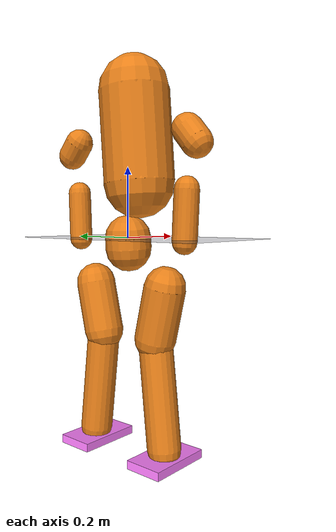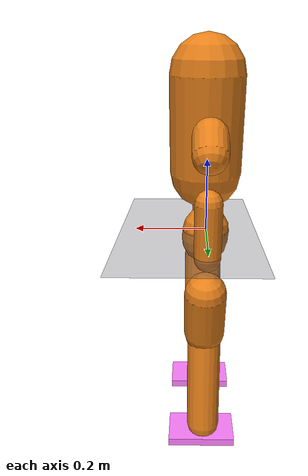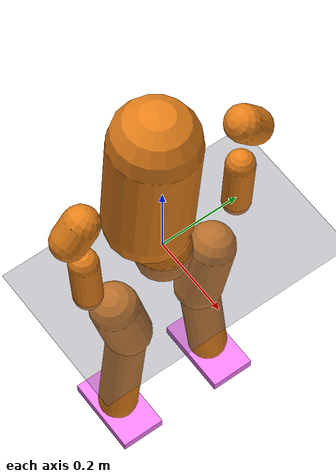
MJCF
<mujoco model="x1">
  <compiler angle="radian" />
  <default>
    <motor ctrlrange="-1 1" ctrllimited="true" />
  </default>

  <option timestep="0.0083333333" gravity="0 0 -9.81" integrator="implicitfast" />

  <worldbody>
    <geom name="ground" type="plane" size="0 0 0.05" pos="0 0 0" friction="1.0 0.05 0.05" condim="4" contype="1" conaffinity="1" rgba="0.3 0.3 0.35 1" />
    <body name="base_link" pos="0 0 0">
      <inertial pos="0.00252285 -0.00063439 0.03023409" mass="4.3041648" quat="-0.49993409 0.50022042 0.50515004 -0.49464013" diaginertia="0.01083013 0.021810116 0.026806174" />
      <freejoint name="floating_base" />
      <geom name="base_link_col" type="capsule" fromto="0 0 0 0.00245 0 -0.03" size="0.066" density="0" contype="1" conaffinity="1" friction="1.0 0.05 0.05" condim="4" rgba="0.9 0.5 0.1 1" group="1" />
      <body name="lumbar_yaw_link" pos="0.00245 0 0.11553403" quat="1 0 0 -2.274557e-05">
        <inertial pos="-0.01800066 1.4e-06 0.02432982" mass="0.36251906" quat="0.99348394 2.3462644e-05 0.11397217 -1.2536067e-05" diaginertia="0.00034245685 0.00045823 0.00065509315" />
        <joint name="lumbar_yaw_joint" type="hinge" limited="true" pos="0 0 0" axis="0 0 1" range="-1.0000 1.0000" stiffness="375.0" damping="37.5" armature="0.02" frictionloss="3.0" />
        <body name="lumbar_roll_link" pos="0 0 0.0405" quat="0.5 0.5 -0.5 -0.5">
          <inertial pos="-0.00029919 0.0003642 -0.00019197" mass="0.03412073" quat="0.53529739 0.56270362 0.3392439 -0.53078707" diaginertia="4.8125283e-06 4.9030789e-06 5.4643928e-06" />
          <joint name="lumbar_roll_joint" type="hinge" limited="true" pos="0 0 0" axis="0 0 1" range="-0.2500 0.2500" stiffness="375.0" damping="37.5" armature="0.02" frictionloss="3.0" />
          <body name="lumbar_pitch_link" pos="0 0 0" quat="0.70710678 0 0.70710678 0">
            <inertial pos="0.00070244 0.21815812 -0.00117164" mass="9.1971074" quat="-0.48427463 -0.49573294 0.50954022 0.50999579" diaginertia="0.060694152 0.12392505 0.16020602" />
            <joint name="lumbar_pitch_joint" type="hinge" limited="true" pos="0 0 0" axis="0 0 -1" range="-0.1500 0.4500" stiffness="450.0" damping="45.0" armature="0.02" frictionloss="4.0" />
            <geom name="lumbar_pitch_link_col" type="capsule" fromto="0 0 0.04 0 0.256 0.02" size="0.1" density="0" contype="1" conaffinity="1" friction="1.0 0.05 0.05" condim="4" rgba="0.9 0.5 0.1 1" group="1" />
            <body name="left_shoulder_pitch_link" pos="0 0.256 -0.1458" quat="0 0 0 -1" gravcomp="0">
              <inertial pos="-0.00251212 -0.00149141 -0.05674475" mass="1.0067875" quat="-0.67979561 -0.055012575 0.72872618 -0.061722725" diaginertia="0.0008533978 0.00095816181 0.0010856204" />
              <joint name="left_shoulder_pitch_joint" type="hinge" limited="true" pos="0 0 0" axis="0 0 -1" range="-2.5000 1.5000" stiffness="50.0" damping="5.0" armature="0.01" frictionloss="0.5" />
              <body name="left_shoulder_roll_link" pos="-0.0313 0 -0.0592" quat="0.70710548 0 -0.70710808 0" gravcomp="0">
                <inertial pos="0.000154 0.07784637 -0.02711338" mass="0.69169508" quat="-0.53585784 -0.46185342 0.5464353 0.44828145" diaginertia="0.00063698245 0.0011961138 0.0013367737" />
                <joint name="left_shoulder_roll_joint" type="hinge" limited="true" pos="0 0 0" axis="0 0 -1" range="-2.0000 0.0000" stiffness="50.0" damping="5.0" armature="0.01" frictionloss="0.5" />
                <body name="left_shoulder_yaw_link" pos="0 0.1252 -0.0313" quat="0.5 0.5 0.5 -0.5" gravcomp="0">
                  <inertial pos="-2.68e-06 0.00182113 -0.00392718" mass="0.72559372" quat="-0.46931073 0.5297545 -0.51442063 -0.48423033" diaginertia="0.0004812039 0.0011604112 0.0011833549" />
                  <joint name="left_shoulder_yaw_joint" type="hinge" limited="true" pos="0 0 0" axis="0 0 1" range="-1.8000 1.8000" stiffness="50.0" damping="5.0" armature="0.01" frictionloss="0.5" />
                  <geom name="left_shoulder_yaw_link_col" type="capsule" fromto="0 0 0 0 -0.031 -0.0365" size="0.042" density="0" contype="1" conaffinity="1" friction="1.0 0.05 0.05" condim="4" rgba="0.9 0.5 0.1 1" group="1" />
                  <body name="left_elbow_pitch_link" pos="0 -0.031 -0.0365" quat="0.70710678 -0.70710678 0 0" gravcomp="0">
                    <inertial pos="2.604e-05 0.07528242 0.0268658" mass="0.69780135" quat="0.42216492 0.56749847 -0.42219566 -0.56698597" diaginertia="0.00061435924 0.0010006506 0.0011626702" />
                    <joint name="left_elbow_pitch_joint" type="hinge" limited="true" pos="0 0 0" axis="0 0 1" range="0.0000 2.0000" stiffness="50.0" damping="5.0" armature="0.01" frictionloss="0.5" />
                    <body name="left_elbow_yaw_link" pos="0 0.117 0.031" quat="0.49999908 0.49999908 -0.50000092 0.50000092" gravcomp="0">
                      <inertial pos="3.656e-05 0.00424199 -0.05421422" mass="0.28787886" quat="0.70530782 0.060241355 -0.70390283 -0.058588874" diaginertia="0.00054032221 0.0007024769 0.00071486088" />
                      <joint name="left_elbow_yaw_joint" type="hinge" limited="true" pos="0 0 0" axis="0 0 1" range="-1.8000 1.8000" stiffness="50.0" damping="5.0" armature="0.01" frictionloss="0.5" />
                      <geom name="left_elbow_yaw_link_col" type="capsule" fromto="0 0 0 0.006 9.9998e-05 -0.1394" size="0.034" density="0" contype="1" conaffinity="1" friction="1.0 0.05 0.05" condim="4" rgba="0.9 0.5 0.1 1" group="1" />
                      <body name="left_wrist_pitch_link" pos="0.006 9.9998e-05 -0.1394" quat="0.62160997 0.78332691 0 0" gravcomp="0">
                        <inertial pos="-9.994e-05 0 0.00229425" mass="0.00900738" quat="0 0 0.70710678 0.70710678" diaginertia="2.4e-07 3.8e-07 5.7e-07" />
                        <joint name="left_wrist_pitch_joint" type="hinge" limited="true" pos="0 0 0" axis="1 0 0" range="-0.4000 0.4000" stiffness="25.0" damping="2.5" armature="0.005" frictionloss="0.2" />
                        <body name="left_wrist_roll_link" pos="0 0 0" quat="0.73068165 -0.61544466 0.19037934 -0.22602632" gravcomp="0">
                          <inertial pos="-0.019731143 0.0013385766 -0.032177575" mass="0.370899" quat="-0.16415344 -0.35401035 0.43660468 0.81062116" diaginertia="0.000211598 0.000356841 0.000404077" />
                          <joint name="left_wrist_roll_joint" type="hinge" limited="true" pos="0 0 0" axis="0 1 0" range="-0.4000 0.4000" stiffness="25.0" damping="2.5" armature="0.005" frictionloss="0.2" />
                          <site name="x_lhand" size="0.005" />
                        </body>
                      </body>
                    </body>
                  </body>
                </body>
              </body>
            </body>
            <body name="right_shoulder_pitch_link" pos="0 0.256 0.1458" quat="-3.6732051e-06 1 0 0" gravcomp="0">
              <inertial pos="0.00250704 -0.00149173 -0.05674328" mass="1.0067875" quat="0.72873245 -0.062328101 -0.67979179 -0.054289459" diaginertia="0.00085339593 0.00095816816 0.0010856159" />
              <joint name="right_shoulder_pitch_joint" type="hinge" limited="true" pos="0 0 0" axis="0 0 1" range="-2.5000 1.5000" stiffness="50.0" damping="5.0" armature="0.01" frictionloss="0.5" />
              <body name="right_shoulder_roll_link" pos="0.0313 0 -0.0592" quat="-2.5973435e-06 0.70710548 2.597353e-06 0.70710808" gravcomp="0">
                <inertial pos="9.998e-05 -0.07787239 -0.02705625" mass="0.69142604" quat="-0.4594695 -0.53694627 0.45064727 0.54542967" diaginertia="0.00063629365 0.0011970435 0.0013376129" />
                <joint name="right_shoulder_roll_joint" type="hinge" limited="true" pos="0 0 0" axis="0 0 1" range="-2.0000 0.0000" stiffness="50.0" damping="5.0" armature="0.01" frictionloss="0.5" />
                <body name="right_shoulder_yaw_link" pos="0 -0.1252 -0.0313" quat="0.70710548 0.70710808 0 0" gravcomp="0">
                  <inertial pos="-0.00189082 -0.00017102 0.03175107" mass="0.604503" quat="0.61216355 0.63014189 0.32261048 -0.35227755" diaginertia="0.00049190455 0.00050515813 0.00055056732" />
                  <joint name="right_shoulder_yaw_joint" type="hinge" limited="true" pos="0 0 0" axis="0 0 1" range="-1.8000 1.8000" stiffness="50.0" damping="5.0" armature="0.01" frictionloss="0.5" />
                  <geom name="right_shoulder_yaw_link_col" type="capsule" fromto="0 0 0 -0.031 0 0.0365" size="0.042" density="0" contype="1" conaffinity="1" friction="1.0 0.05 0.05" condim="4" rgba="0.9 0.5 0.1 1" group="1" />
                  <body name="right_elbow_pitch_link" pos="-0.031 0 0.0365" quat="0.5 -0.5 0.5 -0.5" gravcomp="0">
                    <inertial pos="-2.604e-05 -0.07529828 0.02685625" mass="0.69780135" quat="0.56738015 0.42232355 -0.56686736 -0.42235527" diaginertia="0.00061417119 0.0010011586 0.0011630202" />
                    <joint name="right_elbow_pitch_joint" type="hinge" limited="true" pos="0 0 0" axis="0 0 -1" range="0.0000 2.0000" stiffness="50.0" damping="5.0" armature="0.01" frictionloss="0.5" />
                    <body name="right_elbow_yaw_link" pos="0 -0.117 0.031" quat="0.49999908 -0.49999908 -0.50000092 -0.50000092" gravcomp="0">
                      <inertial pos="-3.65e-05 -0.00422926 -0.05414537" mass="0.28835476" quat="0.060262671 0.70530237 -0.058608682 -0.70390483" diaginertia="0.00054035512 0.000703364 0.00071572088" />
                      <joint name="right_elbow_yaw_joint" type="hinge" limited="true" pos="0 0 0" axis="0 0 -1" range="-1.8000 1.8000" stiffness="50.0" damping="5.0" armature="0.01" frictionloss="0.5" />
                      <geom name="right_elbow_yaw_link_col" type="capsule" fromto="0 0 0 0.006 9.9998e-05 -0.1394" size="0.034" density="0" contype="1" conaffinity="1" friction="1.0 0.05 0.05" condim="4" rgba="0.9 0.5 0.1 1" group="1" />
                      <body name="right_wrist_pitch_link" pos="0.006 9.9998e-05 -0.1394" quat="0.62160997 0.78332691 0 0" gravcomp="0">
                        <inertial pos="-9.994e-05 0 0.00229425" mass="0.00900738" quat="0 0 0.70710678 0.70710678" diaginertia="2.4e-07 3.8e-07 5.7e-07" />
                        <joint name="right_wrist_pitch_joint" type="hinge" limited="true" pos="0 0 0" axis="1 0 0" range="-0.4000 0.4000" stiffness="25.0" damping="2.5" armature="0.005" frictionloss="0.2" />
                        <body name="right_wrist_roll_link" pos="0 0 0" quat="0.73068165 -0.61544466 0.19037934 -0.22602632" gravcomp="0">
                          <inertial pos="-0.020122254 -0.025856909 -0.01878886" mass="0.370899" quat="0.17406994 0.50719397 -0.29774186 0.78981245" diaginertia="0.000211598 0.000356841 0.000404077" />
                          <joint name="right_wrist_roll_joint" type="hinge" limited="true" pos="0 0 0" axis="0 1 0" range="-0.4000 0.4000" stiffness="25.0" damping="2.5" armature="0.005" frictionloss="0.2" />
                          <site name="x_rhand" size="0.005" />
                        </body>
                      </body>
                    </body>
                  </body>
                </body>
              </body>
            </body>
            <site name="x_torso" size="0.005" />
          </body>
        </body>
      </body>
      <body name="left_hip_pitch_link" pos="0.00245 0.092277 -0.012143" quat="0.65328003 0.27059915 -0.27059815 0.65328243" gravcomp="0">
        <inertial pos="-4.816e-05 -0.01075844 -0.05407776" mass="1.6733645" quat="-0.55583853 -0.41053313 -0.43015369 0.58092502" diaginertia="0.0021514249 0.0023446612 0.0025641839" />
        <joint name="left_hip_pitch_joint" type="hinge" limited="true" pos="0 0 0" axis="0 0 1" range="-1.0000 2.0000" stiffness="450.0" damping="45.0" armature="0.02" frictionloss="4.0" />
        <body name="left_hip_roll_link" pos="0 -0.0405 -0.0589" quat="0.65328148 0.65328148 0.27059805 -0.27059805" gravcomp="0">
          <inertial pos="0.00014604 -0.04123483 -0.01015339" mass="0.28562185" quat="-0.23594177 0.6650998 0.66693304 0.23911095" diaginertia="0.00027528831 0.00055729377 0.00061295792" />
          <joint name="left_hip_roll_joint" type="hinge" limited="true" pos="0 0 0" axis="0 0 -1" range="-1.5000 0.2000" stiffness="375.0" damping="37.5" armature="0.02" frictionloss="3.0" />
          <body name="left_hip_yaw_link" pos="0 -0.083804916 -0.0406" quat="0.70710678 0.70710678 0 0" gravcomp="0">
            <inertial pos="-0.00212295 -3.062e-05 0.09164842" mass="2.7369623" quat="-0.68378267 0.0022403155 0.72967696 0.0027883451" diaginertia="0.0033874369 0.012449468 0.012747356" />
            <joint name="left_hip_yaw_joint" type="hinge" limited="true" pos="0 0 0" axis="0 0 -1" range="-1.5000 1.5000" stiffness="375.0" damping="37.5" armature="0.02" frictionloss="3.0" />
            <geom name="left_hip_yaw_link_col" type="capsule" fromto="0 0 0 -0.0337 0 0.1422" size="0.058" density="0" contype="1" conaffinity="1" friction="1.0 0.05 0.05" condim="4" rgba="0.9 0.5 0.1 1" group="1" />
            <body name="left_knee_pitch_link" pos="-0.0337 0 0.1422" quat="0.5 -0.5 0.5 -0.5" gravcomp="0">
              <inertial pos="-0.0047354 -0.13101324 0.0279688" mass="1.5122608" quat="0.71028505 -0.016246061 0.079548123 0.69921621" diaginertia="0.0016206203 0.0080646226 0.0083828071" />
              <joint name="left_knee_pitch_joint" type="hinge" limited="true" pos="0 0 0" axis="0 0 1" range="0.0000 2.0000" stiffness="450.0" damping="45.0" armature="0.02" frictionloss="4.0" />
              <geom name="left_knee_pitch_link_col" type="capsule" fromto="0 0 0 0 -0.30494 0.0336" size="0.048" density="0" contype="1" conaffinity="1" friction="1.0 0.05 0.05" condim="4" rgba="0.9 0.5 0.1 1" group="1" />
              <body name="left_ankle_pitch_link" pos="0 -0.30494 0.0336" quat="0 0 -1 0" gravcomp="0">
                <inertial pos="-2.32e-06 7.077e-05 -2.048e-05" mass="0.06217211" quat="-0.5 0.5 0.5 0.5" diaginertia="6.68e-06 2.273e-05 2.373e-05" />
                <joint name="left_ankle_pitch_joint" type="hinge" limited="true" pos="0 0 0" axis="0 0 -1" range="-0.4100 0.3500" stiffness="200.0" damping="20.0" armature="0.02" frictionloss="1.5" />
                <body name="left_ankle_roll_link" pos="0 0 0" quat="0.70710678 0 0.70710678 0" gravcomp="0">
                  <inertial pos="0.00017156 -0.02524695 -0.00019936" mass="0.58971207" quat="-0.50741897 0.49044917 0.49158279 0.51022737" diaginertia="0.00054139113 0.0015211445 0.0019006944" />
                  <joint name="left_ankle_roll_joint" type="hinge" limited="true" pos="0 0 0" axis="0 0 1" range="-0.6400 0.6400" stiffness="200.0" damping="20.0" armature="0.02" frictionloss="1.5" />
                  <geom name="left_ankle_roll_link_sole" type="box" pos="0 -0.0303 0.005" size="0.055 0.012 0.098" density="0" contype="1" conaffinity="1" friction="1.0 0.05 0.05" condim="4" rgba="1 0.5 1 1" group="1" />
                  <site name="x_lfoot" size="0.005" />
                </body>
              </body>
            </body>
          </body>
        </body>
      </body>
      <body name="right_hip_pitch_link" pos="0.00245 -0.092277 -0.012143" quat="0.65328003 -0.27059915 -0.27059815 -0.65328243" gravcomp="0">
        <inertial pos="-0.00011915 0.01061483 -0.05407727" mass="1.6665735" quat="0.5736407 -0.43321111 -0.40738862 -0.56329298" diaginertia="0.0021331293 0.0023212051 0.0025451856" />
        <joint name="right_hip_pitch_joint" type="hinge" limited="true" pos="0 0 0" axis="0 0 1" range="-2.0000 1.0000" stiffness="450.0" damping="45.0" armature="0.02" frictionloss="4.0" />
        <body name="right_hip_roll_link" pos="0 0.0405 -0.0589" quat="0.65328148 0.65328148 0.27059805 -0.27059805" gravcomp="0">
          <inertial pos="-0.00027058 -0.04164617 0.01034263" mass="0.28768793" quat="-0.66237136 0.22470499 0.24666334 0.6707675" diaginertia="0.00028038909 0.00056679462 0.00062656629" />
          <joint name="right_hip_roll_joint" type="hinge" limited="true" pos="0 0 0" axis="0 0 1" range="-0.2000 1.5000" stiffness="375.0" damping="37.5" armature="0.02" frictionloss="3.0" />
          <body name="right_hip_yaw_link" pos="0 -0.077754916 0.0406" quat="0.70710023 -0.70710023 -0.0030441826 0.0030441826" gravcomp="0">
            <inertial pos="-0.00241642 1.672e-05 -0.09704704" mass="2.6963535" quat="0.00054247237 -0.68390305 0.00090981878 0.72957213" diaginertia="0.003325326 0.01225062 0.012579424" />
            <joint name="right_hip_yaw_joint" type="hinge" limited="true" pos="0 0 0" axis="0 0 1" range="-1.5000 1.5000" stiffness="375.0" damping="37.5" armature="0.02" frictionloss="3.0" />
            <geom name="right_hip_yaw_link_col" type="capsule" fromto="0 0 0 -0.0347752 0 -0.147956" size="0.058" density="0" contype="1" conaffinity="1" friction="1.0 0.05 0.05" condim="4" rgba="0.9 0.5 0.1 1" group="1" />
            <body name="right_knee_pitch_link" pos="-0.034775216 0 -0.14795606" quat="0.4978428 0.50214793 0.50214793 0.4978428" gravcomp="0">
              <inertial pos="0.00477062 -0.13172342 0.02793834" mass="1.50954" quat="0.70923015 -0.016207092 -0.079956259 -0.70024062" diaginertia="0.0016171475 0.0080198498 0.0083387026" />
              <joint name="right_knee_pitch_joint" type="hinge" limited="true" pos="0 0 0" axis="0 0 -1" range="0.0000 2.0000" stiffness="450.0" damping="45.0" armature="0.02" frictionloss="4.0" />
              <geom name="right_knee_pitch_link_col" type="capsule" fromto="0 0 0 0 -0.30494 0.0336" size="0.048" density="0" contype="1" conaffinity="1" friction="1.0 0.05 0.05" condim="4" rgba="0.9 0.5 0.1 1" group="1" />
              <body name="right_ankle_pitch_link" pos="0 -0.30494 0.0336" quat="0 1 0 0" gravcomp="0">
                <inertial pos="2.47e-06 -7.076e-05 -1.763e-05" mass="0.06217211" quat="-0.50014661 -0.49985335 -0.49985335 0.50014661" diaginertia="6.6799941e-06 2.273e-05 2.3730006e-05" />
                <joint name="right_ankle_pitch_joint" type="hinge" limited="true" pos="0 0 0" axis="0 0 1" range="-0.4100 0.3500" stiffness="200.0" damping="20.0" armature="0.02" frictionloss="1.5" />
                <body name="right_ankle_roll_link" pos="0 0 0" quat="0.70710678 0 0.70710678 0" gravcomp="0">
                  <inertial pos="-2.32e-06 0.02507893 0.00010556" mass="0.59182763" quat="-0.49119535 0.50862693 0.50864236 0.49123185" diaginertia="0.00054236958 0.00151845 0.0018940604" />
                  <joint name="right_ankle_roll_joint" type="hinge" limited="true" pos="0 0 0" axis="0 0 1" range="-0.6400 0.6400" stiffness="200.0" damping="20.0" armature="0.02" frictionloss="1.5" />
                  <geom name="right_ankle_roll_link_sole" type="box" pos="0 0.0303 0.005" size="0.055 0.012 0.098" density="0" contype="1" conaffinity="1" friction="1.0 0.05 0.05" condim="4" rgba="1 0.5 1 1" group="1" />
                  <site name="x_rfoot" size="0.005" />
                </body>
              </body>
            </body>
          </body>
        </body>
      </body>
      <site name="x_base" size="0.005" />
    </body>
      <camera name="track" pos="0 -3.5 1.1" xyaxes="1 0 0 0 0.3 0.95" />
  </worldbody>
  <contact>
    <exclude body1="base_link" body2="lumbar_yaw_link" />
    <exclude body1="base_link" body2="lumbar_roll_link" />
    <exclude body1="base_link" body2="left_hip_pitch_link" />
    <exclude body1="base_link" body2="left_hip_roll_link" />
    <exclude body1="base_link" body2="right_hip_pitch_link" />
    <exclude body1="base_link" body2="right_hip_roll_link" />
    <exclude body1="lumbar_yaw_link" body2="lumbar_roll_link" />
    <exclude body1="lumbar_yaw_link" body2="lumbar_pitch_link" />
    <exclude body1="lumbar_yaw_link" body2="left_hip_pitch_link" />
    <exclude body1="lumbar_yaw_link" body2="right_hip_pitch_link" />
    <exclude body1="lumbar_roll_link" body2="lumbar_pitch_link" />
    <exclude body1="lumbar_roll_link" body2="left_shoulder_pitch_link" />
    <exclude body1="lumbar_roll_link" body2="right_shoulder_pitch_link" />
    <exclude body1="lumbar_pitch_link" body2="left_shoulder_pitch_link" />
    <exclude body1="lumbar_pitch_link" body2="left_shoulder_roll_link" />
    <exclude body1="lumbar_pitch_link" body2="right_shoulder_pitch_link" />
    <exclude body1="lumbar_pitch_link" body2="right_shoulder_roll_link" />
    <exclude body1="left_shoulder_pitch_link" body2="left_shoulder_roll_link" />
    <exclude body1="left_shoulder_pitch_link" body2="left_shoulder_yaw_link" />
    <exclude body1="left_shoulder_pitch_link" body2="right_shoulder_pitch_link" />
    <exclude body1="left_shoulder_roll_link" body2="left_shoulder_yaw_link" />
    <exclude body1="left_shoulder_roll_link" body2="left_elbow_pitch_link" />
    <exclude body1="left_shoulder_yaw_link" body2="left_elbow_pitch_link" />
    <exclude body1="left_shoulder_yaw_link" body2="left_elbow_yaw_link" />
    <exclude body1="left_elbow_pitch_link" body2="left_elbow_yaw_link" />
    <exclude body1="left_elbow_pitch_link" body2="left_wrist_pitch_link" />
    <exclude body1="left_elbow_yaw_link" body2="left_wrist_pitch_link" />
    <exclude body1="left_elbow_yaw_link" body2="left_wrist_roll_link" />
    <exclude body1="left_wrist_pitch_link" body2="left_wrist_roll_link" />
    <exclude body1="right_shoulder_pitch_link" body2="right_shoulder_roll_link" />
    <exclude body1="right_shoulder_pitch_link" body2="right_shoulder_yaw_link" />
    <exclude body1="right_shoulder_roll_link" body2="right_shoulder_yaw_link" />
    <exclude body1="right_shoulder_roll_link" body2="right_elbow_pitch_link" />
    <exclude body1="right_shoulder_yaw_link" body2="right_elbow_pitch_link" />
    <exclude body1="right_shoulder_yaw_link" body2="right_elbow_yaw_link" />
    <exclude body1="right_elbow_pitch_link" body2="right_elbow_yaw_link" />
    <exclude body1="right_elbow_pitch_link" body2="right_wrist_pitch_link" />
    <exclude body1="right_elbow_yaw_link" body2="right_wrist_pitch_link" />
    <exclude body1="right_elbow_yaw_link" body2="right_wrist_roll_link" />
    <exclude body1="right_wrist_pitch_link" body2="right_wrist_roll_link" />
    <exclude body1="left_hip_pitch_link" body2="left_hip_roll_link" />
    <exclude body1="left_hip_pitch_link" body2="left_hip_yaw_link" />
    <exclude body1="left_hip_pitch_link" body2="right_hip_pitch_link" />
    <exclude body1="left_hip_roll_link" body2="left_hip_yaw_link" />
    <exclude body1="left_hip_roll_link" body2="left_knee_pitch_link" />
    <exclude body1="left_hip_yaw_link" body2="left_knee_pitch_link" />
    <exclude body1="left_hip_yaw_link" body2="left_ankle_pitch_link" />
    <exclude body1="left_knee_pitch_link" body2="left_ankle_pitch_link" />
    <exclude body1="left_knee_pitch_link" body2="left_ankle_roll_link" />
    <exclude body1="left_ankle_pitch_link" body2="left_ankle_roll_link" />
    <exclude body1="right_hip_pitch_link" body2="right_hip_roll_link" />
    <exclude body1="right_hip_pitch_link" body2="right_hip_yaw_link" />
    <exclude body1="right_hip_roll_link" body2="right_hip_yaw_link" />
    <exclude body1="right_hip_roll_link" body2="right_knee_pitch_link" />
    <exclude body1="right_hip_yaw_link" body2="right_knee_pitch_link" />
    <exclude body1="right_hip_yaw_link" body2="right_ankle_pitch_link" />
    <exclude body1="right_knee_pitch_link" body2="right_ankle_pitch_link" />
    <exclude body1="right_knee_pitch_link" body2="right_ankle_roll_link" />
    <exclude body1="right_ankle_pitch_link" body2="right_ankle_roll_link" />
  </contact>
  <actuator>
    <motor name="motor_lumbar_yaw_joint" joint="lumbar_yaw_joint" gear="150.0" />
    <motor name="motor_lumbar_roll_joint" joint="lumbar_roll_joint" gear="150.0" />
    <motor name="motor_lumbar_pitch_joint" joint="lumbar_pitch_joint" gear="180.0" />
    <motor name="motor_left_shoulder_pitch_joint" joint="left_shoulder_pitch_joint" gear="20.0" />
    <motor name="motor_left_shoulder_roll_joint" joint="left_shoulder_roll_joint" gear="20.0" />
    <motor name="motor_left_shoulder_yaw_joint" joint="left_shoulder_yaw_joint" gear="20.0" />
    <motor name="motor_left_elbow_pitch_joint" joint="left_elbow_pitch_joint" gear="20.0" />
    <motor name="motor_left_elbow_yaw_joint" joint="left_elbow_yaw_joint" gear="20.0" />
    <motor name="motor_left_wrist_pitch_joint" joint="left_wrist_pitch_joint" gear="10.0" />
    <motor name="motor_left_wrist_roll_joint" joint="left_wrist_roll_joint" gear="10.0" />
    <motor name="motor_right_shoulder_pitch_joint" joint="right_shoulder_pitch_joint" gear="20.0" />
    <motor name="motor_right_shoulder_roll_joint" joint="right_shoulder_roll_joint" gear="20.0" />
    <motor name="motor_right_shoulder_yaw_joint" joint="right_shoulder_yaw_joint" gear="20.0" />
    <motor name="motor_right_elbow_pitch_joint" joint="right_elbow_pitch_joint" gear="20.0" />
    <motor name="motor_right_elbow_yaw_joint" joint="right_elbow_yaw_joint" gear="20.0" />
    <motor name="motor_right_wrist_pitch_joint" joint="right_wrist_pitch_joint" gear="10.0" />
    <motor name="motor_right_wrist_roll_joint" joint="right_wrist_roll_joint" gear="10.0" />
    <motor name="motor_left_hip_pitch_joint" joint="left_hip_pitch_joint" gear="180.0" />
    <motor name="motor_left_hip_roll_joint" joint="left_hip_roll_joint" gear="150.0" />
    <motor name="motor_left_hip_yaw_joint" joint="left_hip_yaw_joint" gear="150.0" />
    <motor name="motor_left_knee_pitch_joint" joint="left_knee_pitch_joint" gear="180.0" />
    <motor name="motor_left_ankle_pitch_joint" joint="left_ankle_pitch_joint" gear="80.0" />
    <motor name="motor_left_ankle_roll_joint" joint="left_ankle_roll_joint" gear="80.0" />
    <motor name="motor_right_hip_pitch_joint" joint="right_hip_pitch_joint" gear="180.0" />
    <motor name="motor_right_hip_roll_joint" joint="right_hip_roll_joint" gear="150.0" />
    <motor name="motor_right_hip_yaw_joint" joint="right_hip_yaw_joint" gear="150.0" />
    <motor name="motor_right_knee_pitch_joint" joint="right_knee_pitch_joint" gear="180.0" />
    <motor name="motor_right_ankle_pitch_joint" joint="right_ankle_pitch_joint" gear="80.0" />
    <motor name="motor_right_ankle_roll_joint" joint="right_ankle_roll_joint" gear="80.0" />
  </actuator>
</mujoco>
